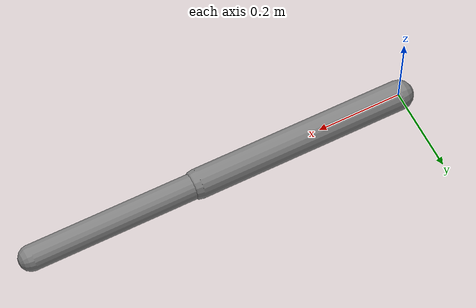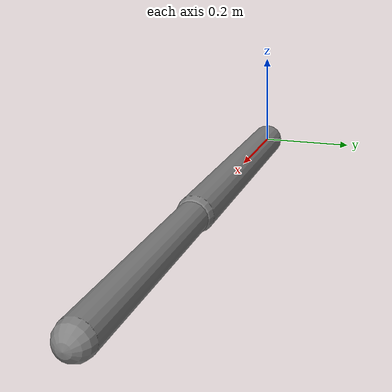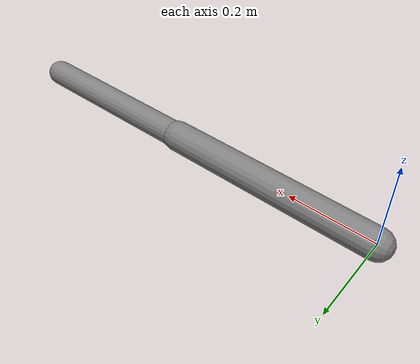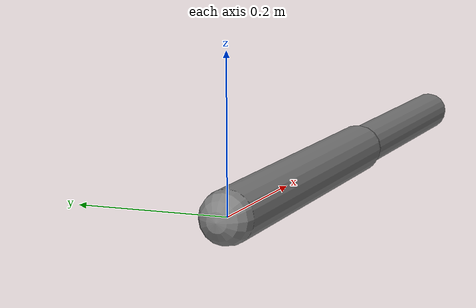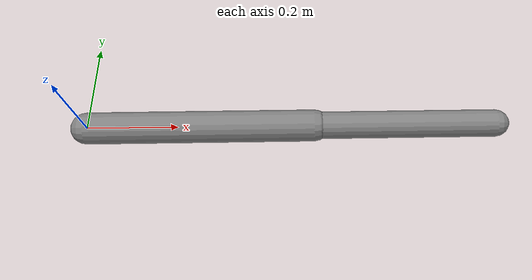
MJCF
<mujoco model="computed torque">
  <option timestep="0.001" integrator="implicitfast"/>
  <worldbody>
    <body>
      <joint name="q1" axis="0 1 0" damping=".05" armature=".01"/>
      <geom type="capsule" fromto="0 0 0 .5 0 0" size=".035" mass="2"/>
      <body pos=".5 0 0">
        <joint name="q2" axis="0 1 0" damping=".04" armature=".01"/>
        <geom type="capsule" fromto="0 0 0 .4 0 0" size=".03" mass="1"/>
      </body>
    </body>
  </worldbody>
  <actuator>
    <motor joint="q1" ctrlrange="-30 30" ctrllimited="true"/>
    <motor joint="q2" ctrlrange="-30 30" ctrllimited="true"/>
  </actuator>
</mujoco>
